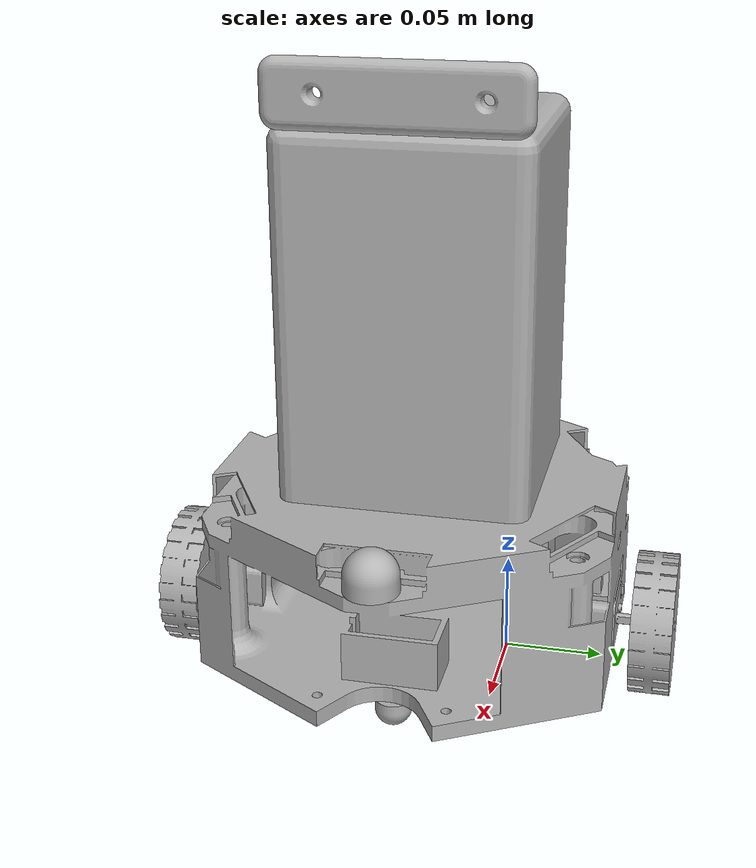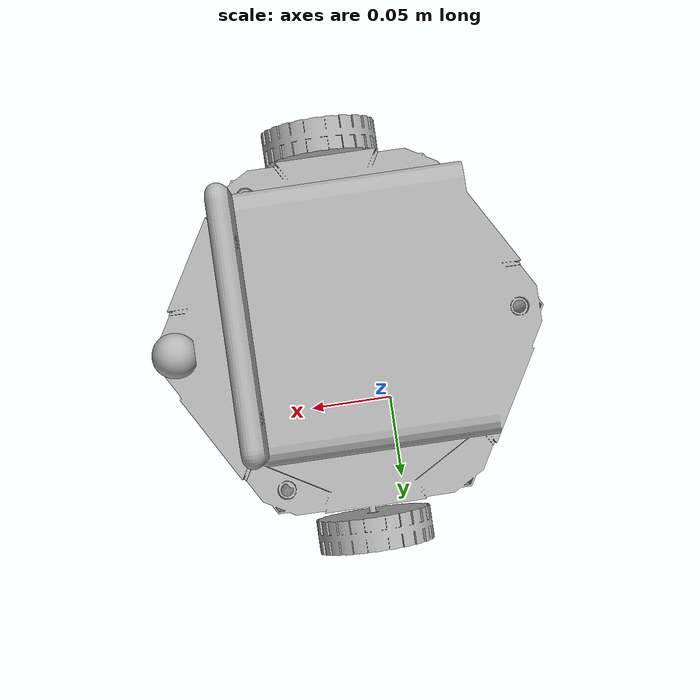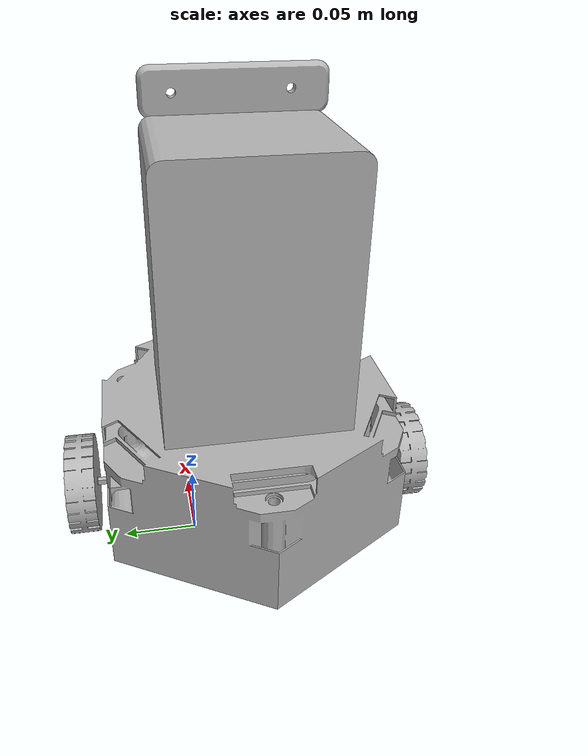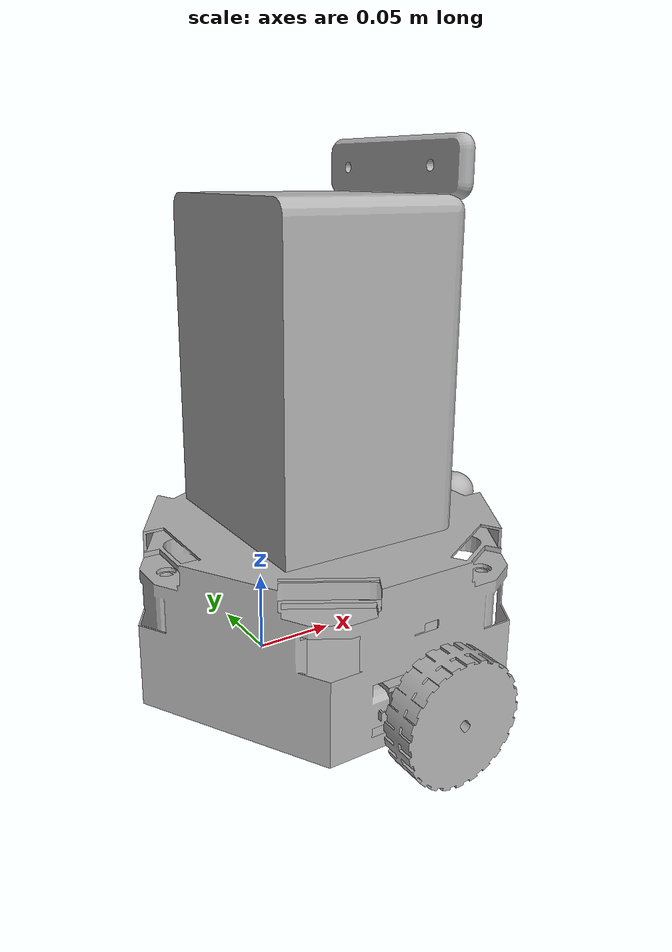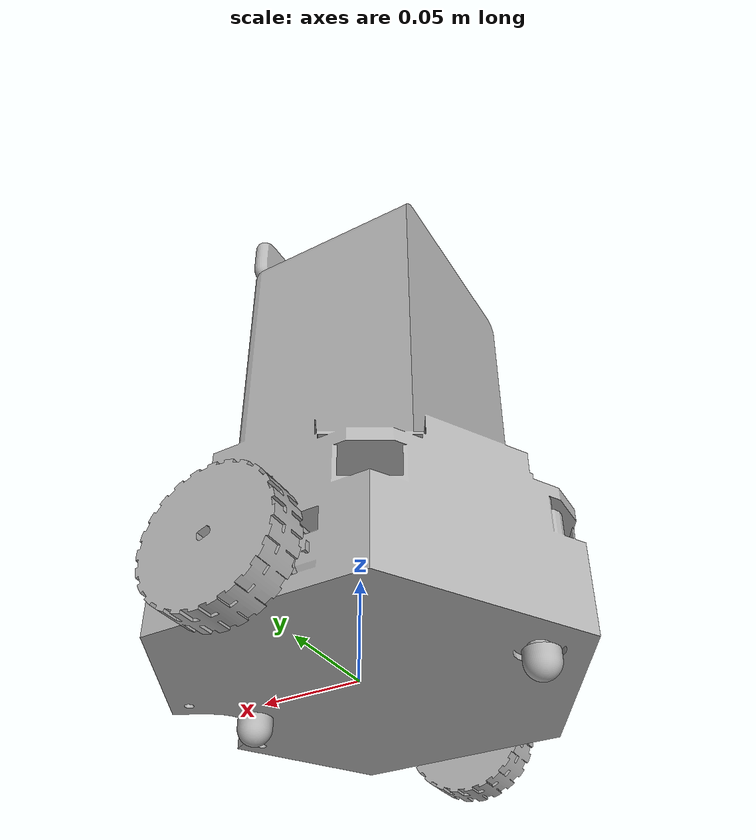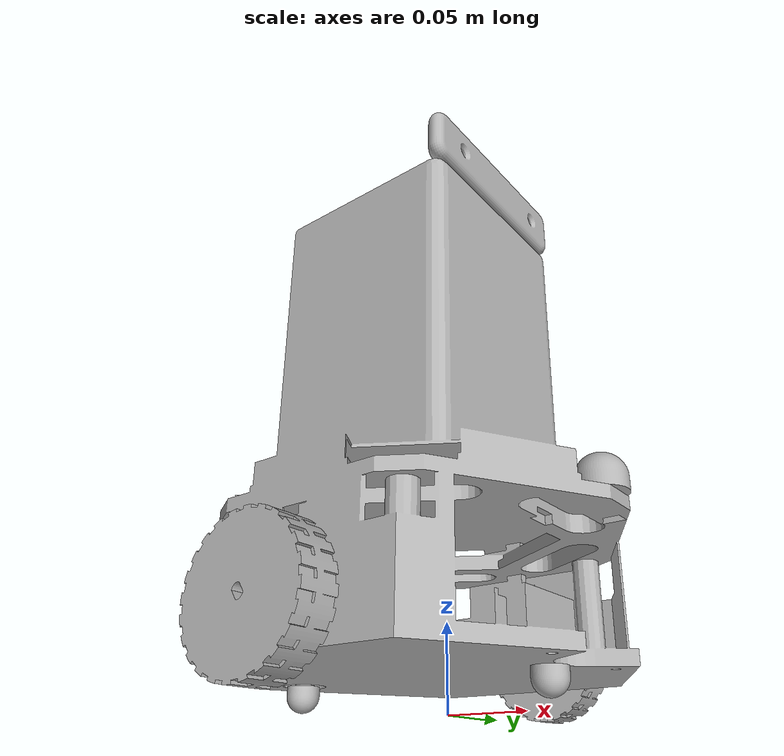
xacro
<?xml version="1.0" ?>
<robot name="aiubot" xmlns:xacro="http://www.ros.org/wiki/xacro">

<xacro:include filename="$(find aiubot_description)/urdf/materials.xacro" />
<xacro:include filename="$(find aiubot_description)/urdf/aiubot.trans" />
<xacro:include filename="$(find aiubot_description)/urdf/aiubot.gazebo" />
<xacro:include filename="$(find aiubot_description)/urdf/aiubot_plugin.gazebo" />

<link name="base_link">
  <inertial>
    <origin rpy="0 0 0" xyz="0.014391584188784936 -0.04150327316862705 0.16552098982328686"/>
    <mass value="23.422030973070978"/>
    <inertia ixx="0.176995" ixy="-7.8e-05" ixz="-0.002127" iyy="0.168725" iyz="-0.000284" izz="0.072261"/>
  </inertial>
  <visual>
    <origin rpy="0 0 0" xyz="0 0 0"/>
    <geometry>
      <mesh filename="package://aiubot_description/meshes/base_link.stl" scale="0.001 0.001 0.001"/>
    </geometry>
    <material name="silver"/>
  </visual>
  <collision>
    <origin rpy="0 0 0" xyz="0 0 0"/>
    <geometry>
      <mesh filename="package://aiubot_description/meshes/base_link.stl" scale="0.001 0.001 0.001"/>
    </geometry>
  </collision>
</link>

<link name="sensorody_1">
  <inertial>
    <origin rpy="0 0 0" xyz="2.986566313342709e-05 2.537664781157578e-07 0.008339826765682193"/>
    <mass value="0.06647327422071277"/>
    <inertia ixx="4e-06" ixy="-0.0" ixz="0.0" iyy="4e-06" iyz="0.0" izz="5e-06"/>
  </inertial>
  <visual>
    <origin rpy="0 0 0" xyz="-0.119977 0.0421 -0.090113"/>
    <geometry>
      <mesh filename="package://aiubot_description/meshes/sensorody_1.stl" scale="0.001 0.001 0.001"/>
    </geometry>
    <material name="silver"/>
  </visual>
  <collision>
    <origin rpy="0 0 0" xyz="-0.119977 0.0421 -0.090113"/>
    <geometry>
      <mesh filename="package://aiubot_description/meshes/sensorody_1.stl" scale="0.001 0.001 0.001"/>
    </geometry>
  </collision>
</link>

<link name="wheelR_1">
  <inertial>
    <origin rpy="0 0 0" xyz="6.197462141116494e-07 0.01020025376647607 -8.06639484915439e-07"/>
    <mass value="0.5823577957861027"/>
    <inertia ixx="0.000194" ixy="0.0" ixz="-0.0" iyy="0.000349" iyz="0.0" izz="0.000194"/>
  </inertial>
  <visual>
    <origin rpy="0 0 0" xyz="-0.021363 -0.06734 -0.034657"/>
    <geometry>
      <mesh filename="package://aiubot_description/meshes/wheelR_1.stl" scale="0.001 0.001 0.001"/>
    </geometry>
    <material name="silver"/>
  </visual>
  <collision>
    <origin rpy="0 0 0" xyz="-0.021363 -0.06734 -0.034657"/>
    <geometry>
      <mesh filename="package://aiubot_description/meshes/wheelR_1.stl" scale="0.001 0.001 0.001"/>
    </geometry>
  </collision>
</link>

<link name="wheelL_1">
  <inertial>
    <origin rpy="0 0 0" xyz="6.197462133691878e-07 -0.009699746233523016 -8.066394823758039e-07"/>
    <mass value="0.5823577957861046"/>
    <inertia ixx="0.000194" ixy="0.0" ixz="-0.0" iyy="0.000349" iyz="0.0" izz="0.000194"/>
  </inertial>
  <visual>
    <origin rpy="0 0 0" xyz="-0.021363 0.15154 -0.034657"/>
    <geometry>
      <mesh filename="package://aiubot_description/meshes/wheelL_1.stl" scale="0.001 0.001 0.001"/>
    </geometry>
    <material name="silver"/>
  </visual>
  <collision>
    <origin rpy="0 0 0" xyz="-0.021363 0.15154 -0.034657"/>
    <geometry>
      <mesh filename="package://aiubot_description/meshes/wheelL_1.stl" scale="0.001 0.001 0.001"/>
    </geometry>
  </collision>
</link>

<link name="castorfront_1">
  <inertial>
    <origin rpy="0 0 0" xyz="-0.005274163602599996 0.001344753766475984 -0.005837305848817878"/>
    <mass value="0.022025609734626382"/>
    <inertia ixx="1e-06" ixy="-0.0" ixz="0.0" iyy="1e-06" iyz="0.0" izz="1e-06"/>
  </inertial>
  <visual>
    <origin rpy="0 0 0" xyz="-0.091107 0.0421 -0.015213"/>
    <geometry>
      <mesh filename="package://aiubot_description/meshes/castorfront_1.stl" scale="0.001 0.001 0.001"/>
    </geometry>
    <material name="silver"/>
  </visual>
  <collision>
    <origin rpy="0 0 0" xyz="-0.091107 0.0421 -0.015213"/>
    <geometry>
      <mesh filename="package://aiubot_description/meshes/castorfront_1.stl" scale="0.001 0.001 0.001"/>
    </geometry>
  </collision>
</link>

<link name="castorback_1">
  <inertial>
    <origin rpy="0 0 0" xyz="-0.000811380762035907 -1.6046233523497877e-05 -0.0058530160061557295"/>
    <mass value="0.022025609734626382"/>
    <inertia ixx="1e-06" ixy="-0.0" ixz="0.0" iyy="1e-06" iyz="0.0" izz="1e-06"/>
  </inertial>
  <visual>
    <origin rpy="0 0 0" xyz="0.068429 0.0421 -0.01577"/>
    <geometry>
      <mesh filename="package://aiubot_description/meshes/castorback_1.stl" scale="0.001 0.001 0.001"/>
    </geometry>
    <material name="silver"/>
  </visual>
  <collision>
    <origin rpy="0 0 0" xyz="0.068429 0.0421 -0.01577"/>
    <geometry>
      <mesh filename="package://aiubot_description/meshes/castorback_1.stl" scale="0.001 0.001 0.001"/>
    </geometry>
  </collision>
</link>

<link name="camera_1">
  <inertial>
    <origin rpy="0 0 0" xyz="0.005043528648229094 -0.0012804265214368532 0.02187126765525438"/>
    <mass value="0.275791504548195"/>
    <inertia ixx="0.000343" ixy="0.0" ixz="-0.0" iyy="2.3e-05" iyz="-0.0" izz="0.000323"/>
  </inertial>
  <visual>
    <origin rpy="0 0 0" xyz="-0.062009 0.041403 -0.276316"/>
    <geometry>
      <mesh filename="package://aiubot_description/meshes/camera_1.stl" scale="0.001 0.001 0.001"/>
    </geometry>
    <material name="silver"/>
  </visual>
  <collision>
    <origin rpy="0 0 0" xyz="-0.062009 0.041403 -0.276316"/>
    <geometry>
      <mesh filename="package://aiubot_description/meshes/camera_1.stl" scale="0.001 0.001 0.001"/>
    </geometry>
  </collision>
</link>

<joint name="sensor" type="fixed">
  <origin rpy="0 0 0" xyz="0.119977 -0.0421 0.090113"/>
  <parent link="base_link"/>
  <child link="sensorody_1"/>
</joint>

<joint name="rightwheel" type="continuous">
  <origin rpy="0 0 0" xyz="0.021363 0.06734 0.034657"/>
  <parent link="base_link"/>
  <child link="wheelR_1"/>
  <axis xyz="0.0 1.0 -0.0"/>
</joint>

<joint name="leftwheel" type="continuous">
  <origin rpy="0 0 0" xyz="0.021363 -0.15154 0.034657"/>
  <parent link="base_link"/>
  <child link="wheelL_1"/>
  <axis xyz="-0.0 1.0 0.0"/>
</joint>

<joint name="frontcaster" type="fixed">
  <origin rpy="0 0 0" xyz="0.091107 -0.0421 0.015213"/>
  <parent link="base_link"/>
  <child link="castorfront_1"/>
</joint>

<joint name="backcaster" type="fixed">
  <origin rpy="0 0 0" xyz="-0.068429 -0.0421 0.01577"/>
  <parent link="base_link"/>
  <child link="castorback_1"/>
</joint>

<joint name="camera" type="fixed">
  <origin rpy="0 0 0" xyz="0.062009 -0.041403 0.276316"/>
  <parent link="base_link"/>
  <child link="camera_1"/>
</joint>

</robot>

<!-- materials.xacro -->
<robot name="aiubot" xmlns:xacro="http://www.ros.org/wiki/xacro" >

<material name="silver">
  <color rgba="0.700 0.700 0.700 1.000"/>
</material>

</robot>

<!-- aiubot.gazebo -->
<robot name="aiubot" xmlns:xacro="http://www.ros.org/wiki/xacro" >

<xacro:property name="laser_color" value="Gazebo/Red " />
<xacro:property name="tyre_color" value="Gazebo/Black" />
<xacro:property name="camera_color" value="Gazebo/BlueLaser" />
<xacro:property name="body_color" value="Gazebo/Silver" />

<gazebo>
  <plugin filename="libgazebo_ros_control.so" name="control"/>
</gazebo>
<gazebo reference="base_link">
  <material>${body_color}</material>
  <mu1>0.2</mu1>
  <mu2>0.2</mu2>
  <selfCollide>true</selfCollide>
  <gravity>true</gravity>
</gazebo>

<gazebo reference="sensorody_1">
  <material>${laser_color}</material>
  <mu1>0.2</mu1>
  <mu2>0.2</mu2>
  <selfCollide>true</selfCollide>
</gazebo>

<gazebo reference="wheelR_1">
  <material>${tyre_color}</material>
  <mu1>0.4</mu1>
  <mu2>0.4</mu2>
  <selfCollide>true</selfCollide>
</gazebo>

<gazebo reference="wheelL_1">
  <material>${tyre_color}</material>
  <mu1>0.4</mu1>
  <mu2>0.4</mu2>
  <selfCollide>true</selfCollide>
</gazebo>

<gazebo reference="castorfront_1">
  <material>${tyre_color}</material>
  <mu1>0.01</mu1>
  <mu2>0.01</mu2>
  <selfCollide>true</selfCollide>
</gazebo>

<gazebo reference="castorback_1">
  <material>${tyre_color}</material>
  <mu1>0.01</mu1>
  <mu2>0.01</mu2>
  <selfCollide>true</selfCollide>
</gazebo>

<gazebo reference="camera_1">
  <material>${camera_color}</material>
  <mu1>0.2</mu1>
  <mu2>0.2</mu2>
  <selfCollide>true</selfCollide>
</gazebo>

</robot>
